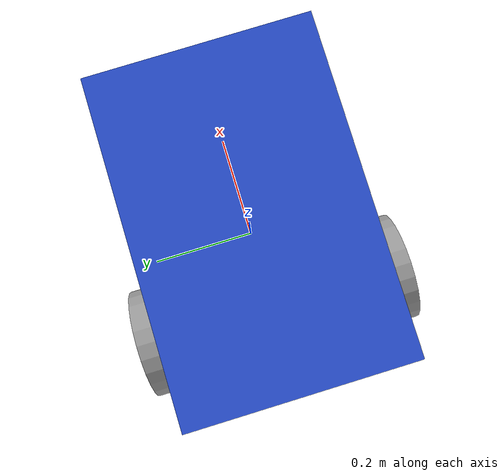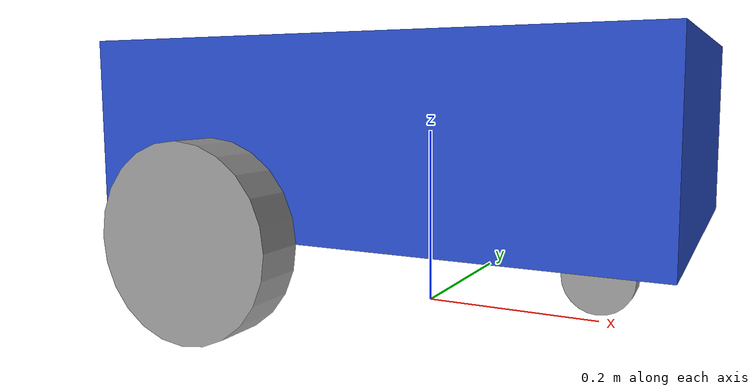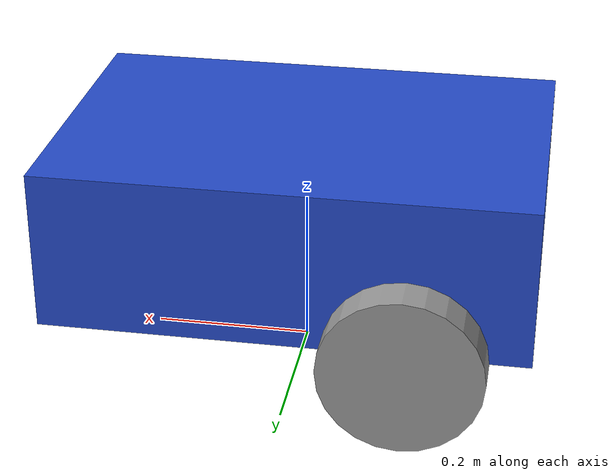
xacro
<?xml version="1.0"?>
<robot xmlns:xacro="http://www.ros.org/wiki/xacro">

    <!-- Defining some variables -->
    <xacro:property name="base_length" value="0.6"/>
    <xacro:property name="base_width" value="0.4"/>
    <xacro:property name="base_height" value="0.2"/>
    <xacro:property name="wheel_radius" value="0.1"/>
    <xacro:property name="wheel_width" value="0.05"/>
    <xacro:property name="caster_wheel_radius" value="${wheel_radius / 2.0}"/>
    <xacro:property name="caster_wheel_support_radius" value="0.04"/>
    <xacro:property name="caster_wheel_support_length" value="${caster_wheel_radius * 0.2}"/>
    <xacro:property name="caster_wheel_real_radius" value="${caster_wheel_radius * 0.8}"/>
    <xacro:property name="caster_wheel_width" value="${wheel_width * 0.5}"/>
    <!-- ============= Defining the links of the robot ============== -->
    <link name="base_link">
        <visual>
            <geometry>
                <box size="${base_length} ${base_width} ${base_height}" />
            </geometry>
            <origin xyz="0 0 ${base_height / 2.0}" rpy="0 0 0"/> <!-- origin of the link -->
            <!-- r is roll, p is pitch, y is yaw -->
            <material name="blue"/>
        </visual>
        <collision>
            <geometry>
                <box size="${base_length} ${base_width} ${base_height}" />
            </geometry>
            <origin xyz="0 0 ${base_height / 2.0}" rpy="0 0 0"/> <!-- origin of the link -->
        </collision>
        <xacro:box_inertia m="5.0" l="${base_length}" w="${base_width}" h="${base_height}"
                           xyz="0 0 ${base_height / 2.0}" rpy="0 0 0"/>
    </link>

    <xacro:macro name="wheel_link" params="prefix">
        <link name="${prefix}_wheel_link">
            <visual>
                <geometry>
                    <cylinder radius="${wheel_radius}" length="${wheel_width}" />
                </geometry>
                <origin xyz="0 0 0" rpy="${pi / 2.0} 0 0"/> <!-- pi is the constant already exist in xacro -->
                <material name="gray"/>
            </visual>
            <collision>
                <geometry>
                    <cylinder radius="${wheel_radius}" length="${wheel_width}" />
                </geometry>
                <origin xyz="0 0 0" rpy="${pi / 2.0} 0 0"/>
            </collision>
            <xacro:cylinder_inertia m="1.0" r="${wheel_radius}" h="${wheel_width}"
                                    xyz="0 0 0" rpy="${pi / 2.0} 0 0"/>
        </link>
    </xacro:macro>

    <xacro:wheel_link prefix="right"/>
    <xacro:wheel_link prefix="left"/>

    <link name="caster_wheel_link_support">
        <visual>
            <geometry>
                <cylinder radius="${caster_wheel_support_radius}" length="${caster_wheel_support_length}" />
            </geometry>
            <origin xyz="0 0 0" rpy="0 0 0"/> <!-- origin of the link -->
            <material name="gray"/>
        </visual>
        <collision>
            <geometry>
                <cylinder radius="${caster_wheel_support_radius}" length="${caster_wheel_support_length}" />
            </geometry>
            <origin xyz="0 0 0" rpy="0 0 0"/> <!-- origin of the link -->
        </collision>
        <xacro:cylinder_inertia m="0.05" r="${caster_wheel_support_radius}" h="${caster_wheel_support_length}"
                              xyz="0 0 0" rpy="0 0 0"/>
    </link>

    <link name="caster_wheel_real_link">
        <visual>
            <geometry>
                <cylinder radius="${caster_wheel_real_radius}" length="${caster_wheel_width}" />
            </geometry>
            <origin xyz="0 0 0" rpy="0 0 0"/> <!-- origin of the link -->
            <material name="gray"/>
        </visual>
        <collision>
            <geometry>
                <cylinder radius="${caster_wheel_real_radius}" length="${caster_wheel_width}" />
            </geometry>
            <origin xyz="0 0 0" rpy="0 0 0"/>
        </collision>
        <xacro:cylinder_inertia m="0.1" r="${caster_wheel_real_radius}" h="${caster_wheel_width}"
                              xyz="0 0 0" rpy="0 0 0"/>
    </link>

    <link name="base_footprint" /> <!-- This link represents the footprint of the robot on the ground it is empty-->

    <!-- ============= Defining the joints of the robot ============== -->
    <joint name="base_left_wheel_joint" type="continuous">
        <parent link="base_link"/>
        <child link="left_wheel_link"/>
        <origin xyz="${-base_length / 4.0} ${-base_width / 2.0 - wheel_width / 2.0} 0" rpy="0 0 0"/> <!-- origin of the joint -->
        <axis xyz="0 1 0"/> <!-- axis of rotation -->
    </joint>

    <joint name="base_right_wheel_joint" type="continuous">
        <parent link="base_link"/>
        <child link="right_wheel_link"/>
        <origin xyz="${-base_length / 4.0} ${base_width / 2.0 + wheel_width / 2.0} 0" rpy="0 0 0"/> <!-- origin of the joint -->
        <axis xyz="0 1 0"/> <!-- axis of rotation -->
    </joint>

    <joint name="base_caster_wheel_support_joint" type="continuous">
        <parent link="base_link"/>
        <child link="caster_wheel_link_support"/>
        <origin xyz="${base_length / 3.0} 0 ${-caster_wheel_support_length / 2.0}" rpy="0 0 0"/> <!-- origin of the joint -->
        <axis xyz="0 0 1"/> <!-- axis of rotation -->
    </joint>

    <joint name="base_caster_wheel_real_joint" type="continuous">
        <parent link="caster_wheel_link_support"/>
        <child link="caster_wheel_real_link"/>
        <origin xyz="0 0 ${-caster_wheel_support_length / 2.0 - caster_wheel_real_radius}" rpy="1.57 1.57 0"/> <!-- origin of the joint -->
        <axis xyz="0 0 1"/> <!-- axis of rotation -->
    </joint>

    <joint name="base_joint" type="fixed">
        <parent link="base_footprint"/>
        <child link="base_link"/>
        <origin xyz="0 0 ${wheel_radius}" rpy="0 0 0"/> <!-- origin of base_footprint_link -->
    </joint>

</robot>
